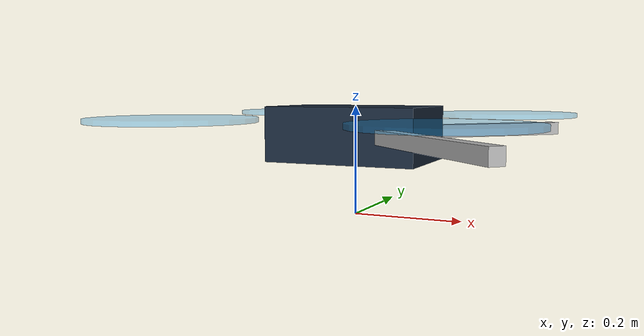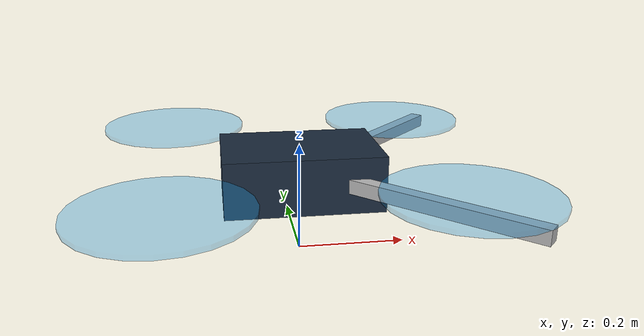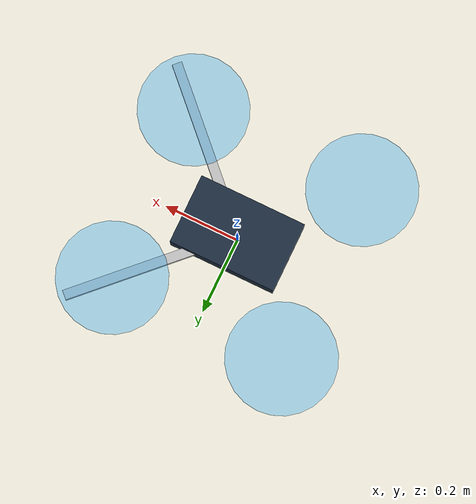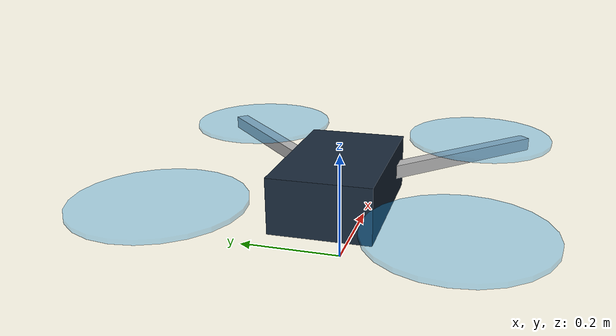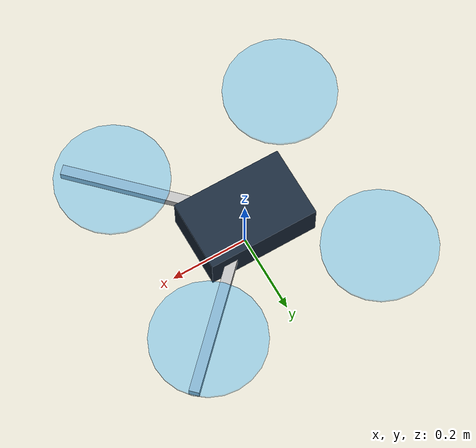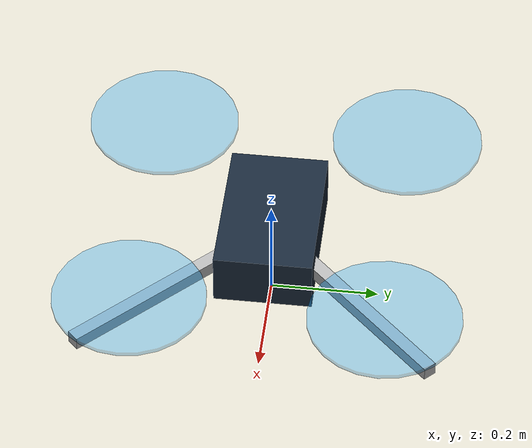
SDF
<?xml version="1.0"?>
<sdf version="1.6">
  <model name="quadcopter">
    <pose>0 0 0.15 0 0 0</pose>
    <link name="base_link">
      <inertial><mass>1.5</mass><inertia><ixx>0.030</ixx><iyy>0.030</iyy><izz>0.055</izz></inertia></inertial>
      <collision name="body_collision"><geometry><box><size>0.28 0.18 0.10</size></box></geometry></collision>
      <visual name="body_visual"><geometry><box><size>0.28 0.18 0.10</size></box></geometry><material><ambient>0.06 0.08 0.11 1</ambient><diffuse>0.10 0.16 0.23 1</diffuse></material></visual>
      <visual name="arm_fl"><pose>0.16 0.16 0 0 0 0.7854</pose><geometry><box><size>0.45 0.025 0.025</size></box></geometry></visual>
      <visual name="arm_fr"><pose>0.16 -0.16 0 0 0 -0.7854</pose><geometry><box><size>0.45 0.025 0.025</size></box></geometry></visual>
      <visual name="rotor_fl"><pose>0.23 0.23 0.03 0 0 0</pose><geometry><cylinder><radius>0.14</radius><length>0.008</length></cylinder></geometry><material><ambient>0.1 0.6 0.9 0.35</ambient><diffuse>0.1 0.6 0.9 0.35</diffuse></material><transparency>0.55</transparency></visual>
      <visual name="rotor_fr"><pose>0.23 -0.23 0.03 0 0 0</pose><geometry><cylinder><radius>0.14</radius><length>0.008</length></cylinder></geometry><material><ambient>0.1 0.6 0.9 0.35</ambient><diffuse>0.1 0.6 0.9 0.35</diffuse></material><transparency>0.55</transparency></visual>
      <visual name="rotor_rl"><pose>-0.23 0.23 0.03 0 0 0</pose><geometry><cylinder><radius>0.14</radius><length>0.008</length></cylinder></geometry><material><ambient>0.1 0.6 0.9 0.35</ambient><diffuse>0.1 0.6 0.9 0.35</diffuse></material><transparency>0.55</transparency></visual>
      <visual name="rotor_rr"><pose>-0.23 -0.23 0.03 0 0 0</pose><geometry><cylinder><radius>0.14</radius><length>0.008</length></cylinder></geometry><material><ambient>0.1 0.6 0.9 0.35</ambient><diffuse>0.1 0.6 0.9 0.35</diffuse></material><transparency>0.55</transparency></visual>
    </link>
    <plugin name="gazebo_actuator" filename="libgazebo_actuator.so">
      <ros><namespace>/quadcopter</namespace></ros>
      <body_link>base_link</body_link>
      <thrust_coefficient>8.5e-6</thrust_coefficient>
      <torque_coefficient>1.6e-7</torque_coefficient>
      <arm_x>0.23</arm_x>
      <arm_y>0.23</arm_y>
      <motor_time_constant>0.06</motor_time_constant>
      <max_rotor_speed>1100.0</max_rotor_speed>
    </plugin>
  </model>
</sdf>
